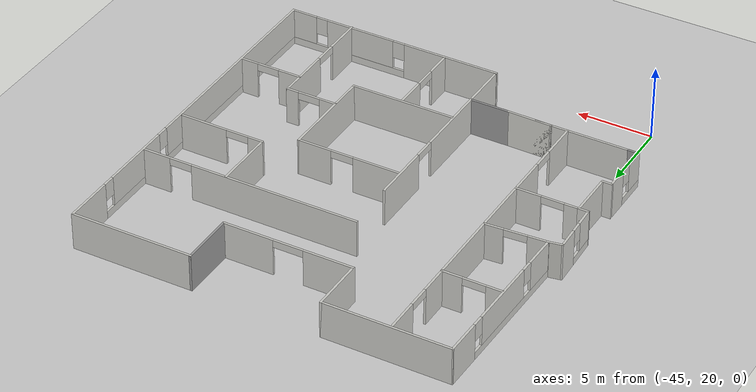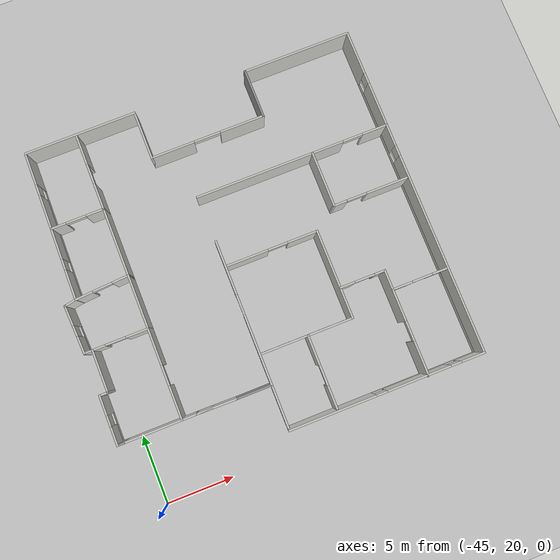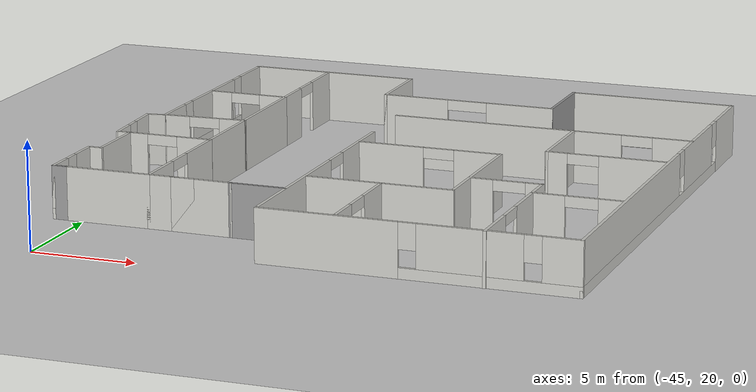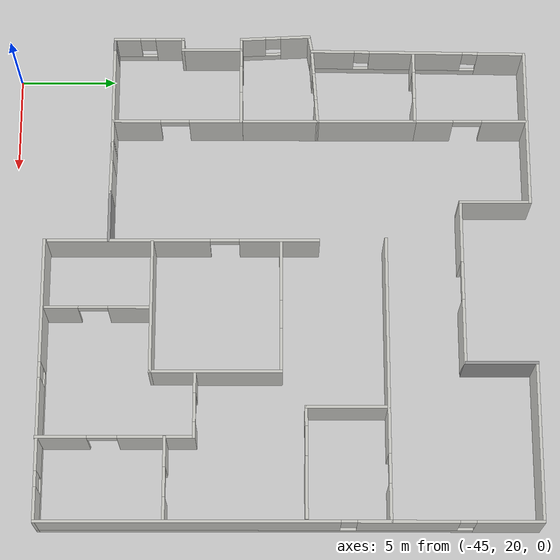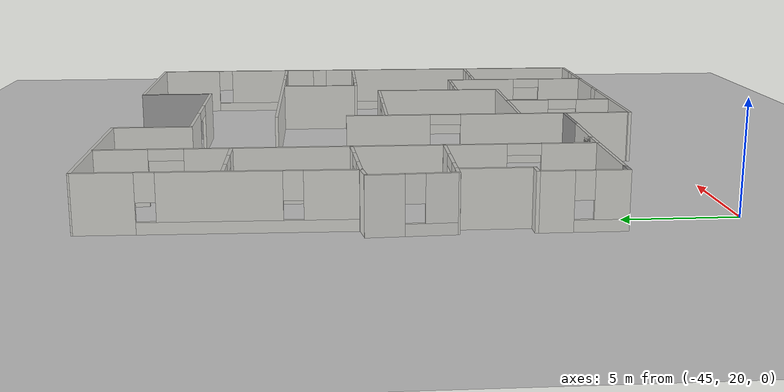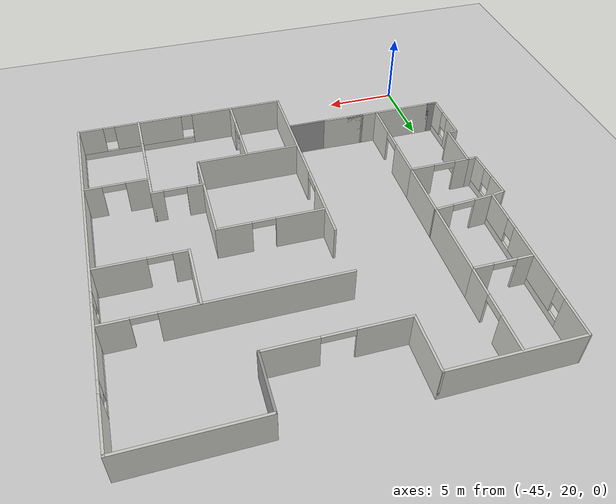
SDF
<sdf version="1.6">
 <world name="default">
  <model name="ground_plane">
   <static>1</static>
   <link name="link">
    <collision name="collision">
     <geometry><plane><normal>0 0 1</normal><size>100 100</size></plane></geometry>
     <surface><friction><ode><mu>100</mu><mu2>50</mu2></ode></friction></surface>
    </collision>
    <visual name="visual">
     <cast_shadows>0</cast_shadows>
     <geometry><plane><normal>0 0 1</normal><size>100 100</size></plane></geometry>
     <material>
      <script><uri>file://media/materials/scripts/gazebo.material</uri><name>Gazebo/Grey</name></script>
     </material>
    </visual>
   </link>
  </model>
  <model name="Multi_25_3">
   <pose>-33.5885 34.2981 0 0 -0 0</pose>
   <link name="Wall_100">
    <collision name="Wall_100_Collision">
     <geometry><box><size>7 0.15 2.5</size></box></geometry>
     <pose>0 0 1.25 0 -0 0</pose>
    </collision>
    <visual name="Wall_100_Visual">
     <pose>0 0 1.25 0 -0 0</pose>
     <geometry><box><size>7 0.15 2.5</size></box></geometry>
     <material>
      <script><uri>file://media/materials/scripts/gazebo.material</uri><name>Gazebo/CeilingTiled</name></script>
      <ambient>1 1 1 1</ambient>
     </material>
     <meta><layer>0</layer></meta>
    </visual>
    <pose>1.98594 -6.93485 0 0 -0 3.14159</pose>
   </link>
   <link name="Wall_102">
    <pose>2.05234 -9.62235 0 0 -0 -1.5708</pose>
    <visual name="Wall_102_Visual_0">
     <pose>-1.62241 0 1.25 0 -0 0</pose>
     <geometry><box><size>2.25518 0.15 2.5</size></box></geometry>
     <material>
      <script><uri>file://media/materials/scripts/gazebo.material</uri><name>Gazebo/CeilingTiled</name></script>
      <ambient>1 1 1 1</ambient>
     </material>
     <meta><layer>0</layer></meta>
    </visual>
    <collision name="Wall_102_Collision_0">
     <geometry><box><size>2.25518 0.15 2.5</size></box></geometry>
     <pose>-1.62241 0 1.25 0 -0 0</pose>
    </collision>
    <visual name="Wall_102_Visual_1">
     <pose>1.87759 0 1.25 0 -0 0</pose>
     <geometry><box><size>1.74482 0.15 2.5</size></box></geometry>
     <material>
      <script><uri>file://media/materials/scripts/gazebo.material</uri><name>Gazebo/CeilingTiled</name></script>
      <ambient>1 1 1 1</ambient>
     </material>
     <meta><layer>0</layer></meta>
    </visual>
    <collision name="Wall_102_Collision_1">
     <geometry><box><size>1.74482 0.15 2.5</size></box></geometry>
     <pose>1.87759 0 1.25 0 -0 0</pose>
    </collision>
    <visual name="Wall_102_Visual_2">
     <pose>0.255185 0 2.25 0 -0 0</pose>
     <geometry><box><size>1.5 0.15 0.5</size></box></geometry>
     <material>
      <script><uri>file://media/materials/scripts/gazebo.material</uri><name>Gazebo/CeilingTiled</name></script>
      <ambient>1 1 1 1</ambient>
     </material>
     <meta><layer>0</layer></meta>
    </visual>
    <collision name="Wall_102_Collision_2">
     <geometry><box><size>1.5 0.15 0.5</size></box></geometry>
     <pose>0.255185 0 2.25 0 -0 0</pose>
    </collision>
   </link>
   <link name="Wall_104">
    <pose>7.11294 -4.67265 0 0 -0 0</pose>
    <visual name="Wall_104_Visual_0">
     <pose>-1.17269 0 1.25 0 -0 0</pose>
     <geometry><box><size>1.15461 0.15 2.5</size></box></geometry>
     <material>
      <script><uri>file://media/materials/scripts/gazebo.material</uri><name>Gazebo/CeilingTiled</name></script>
      <ambient>1 1 1 1</ambient>
     </material>
     <meta><layer>0</layer></meta>
    </visual>
    <collision name="Wall_104_Collision_0">
     <geometry><box><size>1.15461 0.15 2.5</size></box></geometry>
     <pose>-1.17269 0 1.25 0 -0 0</pose>
    </collision>
    <visual name="Wall_104_Visual_1">
     <pose>1.32731 0 1.25 0 -0 0</pose>
     <geometry><box><size>0.845387 0.15 2.5</size></box></geometry>
     <material>
      <script><uri>file://media/materials/scripts/gazebo.material</uri><name>Gazebo/CeilingTiled</name></script>
      <ambient>1 1 1 1</ambient>
     </material>
     <meta><layer>0</layer></meta>
    </visual>
    <collision name="Wall_104_Collision_1">
     <geometry><box><size>0.845387 0.15 2.5</size></box></geometry>
     <pose>1.32731 0 1.25 0 -0 0</pose>
    </collision>
    <visual name="Wall_104_Visual_2">
     <pose>0.154613 0 2.25 0 -0 0</pose>
     <geometry><box><size>1.5 0.15 0.5</size></box></geometry>
     <material>
      <script><uri>file://media/materials/scripts/gazebo.material</uri><name>Gazebo/CeilingTiled</name></script>
      <ambient>1 1 1 1</ambient>
     </material>
     <meta><layer>0</layer></meta>
    </visual>
    <collision name="Wall_104_Collision_2">
     <geometry><box><size>1.5 0.15 0.5</size></box></geometry>
     <pose>0.154613 0 2.25 0 -0 0</pose>
    </collision>
   </link>
   <link name="Wall_105">
    <pose>8.78794 -8.59765 0 0 -0 -1.5708</pose>
    <visual name="Wall_105_Visual_0">
     <pose>-2.05426 0 1.25 0 -0 0</pose>
     <geometry><box><size>3.89148 0.15 2.5</size></box></geometry>
     <material>
      <script><uri>file://media/materials/scripts/gazebo.material</uri><name>Gazebo/CeilingTiled</name></script>
      <ambient>1 1 1 1</ambient>
     </material>
     <meta><layer>0</layer></meta>
    </visual>
    <collision name="Wall_105_Collision_0">
     <geometry><box><size>3.89148 0.15 2.5</size></box></geometry>
     <pose>-2.05426 0 1.25 0 -0 0</pose>
    </collision>
    <visual name="Wall_105_Visual_1">
     <pose>2.69574 0 1.25 0 -0 0</pose>
     <geometry><box><size>2.60852 0.15 2.5</size></box></geometry>
     <material>
      <script><uri>file://media/materials/scripts/gazebo.material</uri><name>Gazebo/CeilingTiled</name></script>
      <ambient>1 1 1 1</ambient>
     </material>
     <meta><layer>0</layer></meta>
    </visual>
    <collision name="Wall_105_Collision_1">
     <geometry><box><size>2.60852 0.15 2.5</size></box></geometry>
     <pose>2.69574 0 1.25 0 -0 0</pose>
    </collision>
    <visual name="Wall_105_Visual_2">
     <pose>0.64148 0 2.25 0 -0 0</pose>
     <geometry><box><size>1.5 0.15 0.5</size></box></geometry>
     <material>
      <script><uri>file://media/materials/scripts/gazebo.material</uri><name>Gazebo/CeilingTiled</name></script>
      <ambient>1 1 1 1</ambient>
     </material>
     <meta><layer>0</layer></meta>
    </visual>
    <collision name="Wall_105_Collision_2">
     <geometry><box><size>1.5 0.15 0.5</size></box></geometry>
     <pose>0.64148 0 2.25 0 -0 0</pose>
    </collision>
   </link>
   <link name="Wall_107">
    <collision name="Wall_107_Collision">
     <geometry><box><size>4.25 0.15 2.5</size></box></geometry>
     <pose>0 0 1.25 0 -0 0</pose>
    </collision>
    <visual name="Wall_107_Visual">
     <pose>0 0 1.25 0 -0 0</pose>
     <geometry><box><size>4.25 0.15 2.5</size></box></geometry>
     <material>
      <script><uri>file://media/materials/scripts/gazebo.material</uri><name>Gazebo/CeilingTiled</name></script>
      <ambient>1 1 1 1</ambient>
     </material>
     <meta><layer>0</layer></meta>
    </visual>
    <pose>7.23362 2.96538 0 0 -0 -1.5708</pose>
   </link>
   <link name="Wall_108">
    <pose>10.0336 0.915384 0 0 -0 0</pose>
    <visual name="Wall_108_Visual_0">
     <pose>-2.34433 0 1.25 0 -0 0</pose>
     <geometry><box><size>1.06134 0.15 2.5</size></box></geometry>
     <material>
      <script><uri>file://media/materials/scripts/gazebo.material</uri><name>Gazebo/CeilingTiled</name></script>
      <ambient>1 1 1 1</ambient>
     </material>
     <meta><layer>0</layer></meta>
    </visual>
    <collision name="Wall_108_Collision_0">
     <geometry><box><size>1.06134 0.15 2.5</size></box></geometry>
     <pose>-2.34433 0 1.25 0 -0 0</pose>
    </collision>
    <visual name="Wall_108_Visual_1">
     <pose>1.28067 0 1.25 0 -0 0</pose>
     <geometry><box><size>3.18866 0.15 2.5</size></box></geometry>
     <material>
      <script><uri>file://media/materials/scripts/gazebo.material</uri><name>Gazebo/CeilingTiled</name></script>
      <ambient>1 1 1 1</ambient>
     </material>
     <meta><layer>0</layer></meta>
    </visual>
    <collision name="Wall_108_Collision_1">
     <geometry><box><size>3.18866 0.15 2.5</size></box></geometry>
     <pose>1.28067 0 1.25 0 -0 0</pose>
    </collision>
    <visual name="Wall_108_Visual_2">
     <pose>-1.06366 0 2.25 0 -0 0</pose>
     <geometry><box><size>1.5 0.15 0.5</size></box></geometry>
     <material>
      <script><uri>file://media/materials/scripts/gazebo.material</uri><name>Gazebo/CeilingTiled</name></script>
      <ambient>1 1 1 1</ambient>
     </material>
     <meta><layer>0</layer></meta>
    </visual>
    <collision name="Wall_108_Collision_2">
     <geometry><box><size>1.5 0.15 0.5</size></box></geometry>
     <pose>-1.06366 0 2.25 0 -0 0</pose>
    </collision>
   </link>
   <link name="Wall_110">
    <pose>10.8527 -6.12767 0 0 -0 0</pose>
    <visual name="Wall_110_Visual_0">
     <pose>-1.34148 0 1.25 0 -0 0</pose>
     <geometry><box><size>1.56703 0.15 2.5</size></box></geometry>
     <material>
      <script><uri>file://media/materials/scripts/gazebo.material</uri><name>Gazebo/CeilingTiled</name></script>
      <ambient>1 1 1 1</ambient>
     </material>
     <meta><layer>0</layer></meta>
    </visual>
    <collision name="Wall_110_Collision_0">
     <geometry><box><size>1.56703 0.15 2.5</size></box></geometry>
     <pose>-1.34148 0 1.25 0 -0 0</pose>
    </collision>
    <visual name="Wall_110_Visual_1">
     <pose>1.53352 0 1.25 0 -0 0</pose>
     <geometry><box><size>1.18297 0.15 2.5</size></box></geometry>
     <material>
      <script><uri>file://media/materials/scripts/gazebo.material</uri><name>Gazebo/CeilingTiled</name></script>
      <ambient>1 1 1 1</ambient>
     </material>
     <meta><layer>0</layer></meta>
    </visual>
    <collision name="Wall_110_Collision_1">
     <geometry><box><size>1.18297 0.15 2.5</size></box></geometry>
     <pose>1.53352 0 1.25 0 -0 0</pose>
    </collision>
    <visual name="Wall_110_Visual_2">
     <pose>0.192032 0 2.25 0 -0 0</pose>
     <geometry><box><size>1.5 0.15 0.5</size></box></geometry>
     <material>
      <script><uri>file://media/materials/scripts/gazebo.material</uri><name>Gazebo/CeilingTiled</name></script>
      <ambient>1 1 1 1</ambient>
     </material>
     <meta><layer>0</layer></meta>
    </visual>
    <collision name="Wall_110_Collision_2">
     <geometry><box><size>1.5 0.15 0.5</size></box></geometry>
     <pose>0.192032 0 2.25 0 -0 0</pose>
    </collision>
   </link>
   <link name="Wall_112">
    <pose>-5.60402 -9.15067 0 0 -0 3.12613</pose>
    <visual name="Wall_112_Visual_0">
     <pose>0 0 1.25 0 -0 0</pose>
     <geometry><box><size>3.03128 0.15 2.5</size></box></geometry>
     <material>
      <script><uri>file://media/materials/scripts/gazebo.material</uri><name>Gazebo/CeilingTiled</name></script>
      <ambient>1 1 1 1</ambient>
     </material>
     <meta><layer>0</layer></meta>
    </visual>
    <collision name="Wall_112_Collision_0">
     <geometry><box><size>3.03128 0.15 2.5</size></box></geometry>
     <pose>0 0 1.25 0 -0 0</pose>
    </collision>
    <visual name="Wall_112_Visual_1">
     <pose>0.909809 0 1.25 0 -0 0</pose>
     <geometry><box><size>1.21166 0.15 2.5</size></box></geometry>
     <material>
      <script><uri>file://media/materials/scripts/gazebo.material</uri><name>Gazebo/CeilingTiled</name></script>
      <ambient>1 1 1 1</ambient>
     </material>
     <meta><layer>0</layer></meta>
    </visual>
    <collision name="Wall_112_Collision_1">
     <geometry><box><size>1.21166 0.15 2.5</size></box></geometry>
     <pose>0.909809 0 1.25 0 -0 0</pose>
    </collision>
   </link>
   <link name="Wall_54">
    <pose>5.73301 -12.4784 0 0 -0 0</pose>
    <visual name="Wall_54_Visual_0">
     <pose>-4.07467 0 1.25 0 -0 0</pose>
     <geometry><box><size>6.54566 0.15 2.5</size></box></geometry>
     <material>
      <script><uri>file://media/materials/scripts/gazebo.material</uri><name>Gazebo/CeilingTiled</name></script>
      <ambient>1 1 1 1</ambient>
     </material>
     <meta><layer>0</layer></meta>
    </visual>
    <collision name="Wall_54_Collision_0">
     <geometry><box><size>6.54566 0.15 2.5</size></box></geometry>
     <pose>-4.07467 0 1.25 0 -0 0</pose>
    </collision>
    <visual name="Wall_54_Visual_1">
     <pose>3.27283 0 0.25 0 -0 0</pose>
     <geometry><box><size>8.14934 0.15 0.5</size></box></geometry>
     <material>
      <script><uri>file://media/materials/scripts/gazebo.material</uri><name>Gazebo/CeilingTiled</name></script>
      <ambient>1 1 1 1</ambient>
     </material>
     <meta><layer>0</layer></meta>
    </visual>
    <collision name="Wall_54_Collision_1">
     <geometry><box><size>8.14934 0.15 0.5</size></box></geometry>
     <pose>3.27283 0 0.25 0 -0 0</pose>
    </collision>
    <visual name="Wall_54_Visual_2">
     <pose>2.38029 0 1.5 0 -0 0</pose>
     <geometry><box><size>4.76426 0.15 2</size></box></geometry>
     <material>
      <script><uri>file://media/materials/scripts/gazebo.material</uri><name>Gazebo/CeilingTiled</name></script>
      <ambient>1 1 1 1</ambient>
     </material>
     <meta><layer>0</layer></meta>
    </visual>
    <collision name="Wall_54_Collision_2">
     <geometry><box><size>4.76426 0.15 2</size></box></geometry>
     <pose>2.38029 0 1.5 0 -0 0</pose>
    </collision>
    <visual name="Wall_54_Visual_3">
     <pose>6.45496 0 1.5 0 -0 0</pose>
     <geometry><box><size>1.78508 0.15 2</size></box></geometry>
     <material>
      <script><uri>file://media/materials/scripts/gazebo.material</uri><name>Gazebo/CeilingTiled</name></script>
      <ambient>1 1 1 1</ambient>
     </material>
     <meta><layer>0</layer></meta>
    </visual>
    <collision name="Wall_54_Collision_3">
     <geometry><box><size>1.78508 0.15 2</size></box></geometry>
     <pose>6.45496 0 1.5 0 -0 0</pose>
    </collision>
    <visual name="Wall_54_Visual_4">
     <pose>-0.401839 0 1.9 0 -0 0</pose>
     <geometry><box><size>0.8 0.15 1.2</size></box></geometry>
     <material>
      <script><uri>file://media/materials/scripts/gazebo.material</uri><name>Gazebo/CeilingTiled</name></script>
      <ambient>1 1 1 1</ambient>
     </material>
     <meta><layer>0</layer></meta>
    </visual>
    <collision name="Wall_54_Collision_4">
     <geometry><box><size>0.8 0.15 1.2</size></box></geometry>
     <pose>-0.401839 0 1.9 0 -0 0</pose>
    </collision>
    <visual name="Wall_54_Visual_5">
     <pose>5.16242 0 1.9 0 -0 0</pose>
     <geometry><box><size>0.8 0.15 1.2</size></box></geometry>
     <material>
      <script><uri>file://media/materials/scripts/gazebo.material</uri><name>Gazebo/CeilingTiled</name></script>
      <ambient>1 1 1 1</ambient>
     </material>
     <meta><layer>0</layer></meta>
    </visual>
    <collision name="Wall_54_Collision_5">
     <geometry><box><size>0.8 0.15 1.2</size></box></geometry>
     <pose>5.16242 0 1.9 0 -0 0</pose>
    </collision>
   </link>
   <link name="Wall_56">
    <pose>13.0055 0.021602 0 0 -0 -1.5708</pose>
    <visual name="Wall_56_Visual_0">
     <pose>-10.8888 0 1.25 0 -0 0</pose>
     <geometry><box><size>3.37231 0.15 2.5</size></box></geometry>
     <material>
      <script><uri>file://media/materials/scripts/gazebo.material</uri><name>Gazebo/CeilingTiled</name></script>
      <ambient>1 1 1 1</ambient>
     </material>
     <meta><layer>0</layer></meta>
    </visual>
    <collision name="Wall_56_Collision_0">
     <geometry><box><size>3.37231 0.15 2.5</size></box></geometry>
     <pose>-10.8888 0 1.25 0 -0 0</pose>
    </collision>
    <visual name="Wall_56_Visual_1">
     <pose>1.68616 0 0.25 0 -0 0</pose>
     <geometry><box><size>21.7777 0.15 0.5</size></box></geometry>
     <material>
      <script><uri>file://media/materials/scripts/gazebo.material</uri><name>Gazebo/CeilingTiled</name></script>
      <ambient>1 1 1 1</ambient>
     </material>
     <meta><layer>0</layer></meta>
    </visual>
    <collision name="Wall_56_Collision_1">
     <geometry><box><size>21.7777 0.15 0.5</size></box></geometry>
     <pose>1.68616 0 0.25 0 -0 0</pose>
    </collision>
    <visual name="Wall_56_Visual_2">
     <pose>-5.8868 0 1.5 0 -0 0</pose>
     <geometry><box><size>5.03177 0.15 2</size></box></geometry>
     <material>
      <script><uri>file://media/materials/scripts/gazebo.material</uri><name>Gazebo/CeilingTiled</name></script>
      <ambient>1 1 1 1</ambient>
     </material>
     <meta><layer>0</layer></meta>
    </visual>
    <collision name="Wall_56_Collision_2">
     <geometry><box><size>5.03177 0.15 2</size></box></geometry>
     <pose>-5.8868 0 1.5 0 -0 0</pose>
    </collision>
    <visual name="Wall_56_Visual_3">
     <pose>5.00204 0 1.5 0 -0 0</pose>
     <geometry><box><size>15.1459 0.15 2</size></box></geometry>
     <material>
      <script><uri>file://media/materials/scripts/gazebo.material</uri><name>Gazebo/CeilingTiled</name></script>
      <ambient>1 1 1 1</ambient>
     </material>
     <meta><layer>0</layer></meta>
    </visual>
    <collision name="Wall_56_Collision_3">
     <geometry><box><size>15.1459 0.15 2</size></box></geometry>
     <pose>5.00204 0 1.5 0 -0 0</pose>
    </collision>
    <visual name="Wall_56_Visual_4">
     <pose>-8.80269 0 1.9 0 -0 0</pose>
     <geometry><box><size>0.8 0.15 1.2</size></box></geometry>
     <material>
      <script><uri>file://media/materials/scripts/gazebo.material</uri><name>Gazebo/CeilingTiled</name></script>
      <ambient>1 1 1 1</ambient>
     </material>
     <meta><layer>0</layer></meta>
    </visual>
    <collision name="Wall_56_Collision_4">
     <geometry><box><size>0.8 0.15 1.2</size></box></geometry>
     <pose>-8.80269 0 1.9 0 -0 0</pose>
    </collision>
    <visual name="Wall_56_Visual_5">
     <pose>-2.97092 0 1.9 0 -0 0</pose>
     <geometry><box><size>0.8 0.15 1.2</size></box></geometry>
     <material>
      <script><uri>file://media/materials/scripts/gazebo.material</uri><name>Gazebo/CeilingTiled</name></script>
      <ambient>1 1 1 1</ambient>
     </material>
     <meta><layer>0</layer></meta>
    </visual>
    <collision name="Wall_56_Collision_5">
     <geometry><box><size>0.8 0.15 1.2</size></box></geometry>
     <pose>-2.97092 0 1.9 0 -0 0</pose>
    </collision>
   </link>
   <link name="Wall_58">
    <collision name="Wall_58_Collision">
     <geometry><box><size>8.5 0.15 2.5</size></box></geometry>
     <pose>0 0 1.25 0 -0 0</pose>
    </collision>
    <visual name="Wall_58_Visual">
     <pose>0 0 1.25 0 -0 0</pose>
     <geometry><box><size>8.5 0.15 2.5</size></box></geometry>
     <material>
      <script><uri>file://media/materials/scripts/gazebo.material</uri><name>Gazebo/CeilingTiled</name></script>
      <ambient>1 1 1 1</ambient>
     </material>
     <meta><layer>0</layer></meta>
    </visual>
    <pose>-7.81949 12.5216 0 0 -0 0</pose>
   </link>
   <link name="Wall_59">
    <collision name="Wall_59_Collision">
     <geometry><box><size>3.75 0.15 2.5</size></box></geometry>
     <pose>0 0 1.25 0 -0 0</pose>
    </collision>
    <visual name="Wall_59_Visual">
     <pose>0 0 1.25 0 -0 0</pose>
     <geometry><box><size>3.75 0.15 2.5</size></box></geometry>
     <material>
      <script><uri>file://media/materials/scripts/gazebo.material</uri><name>Gazebo/CeilingTiled</name></script>
      <ambient>1 1 1 1</ambient>
     </material>
     <meta><layer>0</layer></meta>
    </visual>
    <pose>-3.64449 10.7216 0 0 -0 -1.5708</pose>
   </link>
   <link name="Wall_60">
    <pose>0.655513 8.9216 0 0 -0 0</pose>
    <visual name="Wall_60_Visual_0">
     <pose>-2.70309 0 1.25 0 -0 0</pose>
     <geometry><box><size>3.34382 0.15 2.5</size></box></geometry>
     <material>
      <script><uri>file://media/materials/scripts/gazebo.material</uri><name>Gazebo/CeilingTiled</name></script>
      <ambient>1 1 1 1</ambient>
     </material>
     <meta><layer>0</layer></meta>
    </visual>
    <collision name="Wall_60_Collision_0">
     <geometry><box><size>3.34382 0.15 2.5</size></box></geometry>
     <pose>-2.70309 0 1.25 0 -0 0</pose>
    </collision>
    <visual name="Wall_60_Visual_1">
     <pose>2.67191 0 1.25 0 -0 0</pose>
     <geometry><box><size>3.40618 0.15 2.5</size></box></geometry>
     <material>
      <script><uri>file://media/materials/scripts/gazebo.material</uri><name>Gazebo/CeilingTiled</name></script>
      <ambient>1 1 1 1</ambient>
     </material>
     <meta><layer>0</layer></meta>
    </visual>
    <collision name="Wall_60_Collision_1">
     <geometry><box><size>3.40618 0.15 2.5</size></box></geometry>
     <pose>2.67191 0 1.25 0 -0 0</pose>
    </collision>
    <visual name="Wall_60_Visual_2">
     <pose>-0.031182 0 2.25 0 -0 0</pose>
     <geometry><box><size>2 0.15 0.5</size></box></geometry>
     <material>
      <script><uri>file://media/materials/scripts/gazebo.material</uri><name>Gazebo/CeilingTiled</name></script>
      <ambient>1 1 1 1</ambient>
     </material>
     <meta><layer>0</layer></meta>
    </visual>
    <collision name="Wall_60_Collision_2">
     <geometry><box><size>2 0.15 0.5</size></box></geometry>
     <pose>-0.031182 0 2.25 0 -0 0</pose>
    </collision>
   </link>
   <link name="Wall_61">
    <collision name="Wall_61_Collision">
     <geometry><box><size>3.75 0.15 2.5</size></box></geometry>
     <pose>0 0 1.25 0 -0 0</pose>
    </collision>
    <visual name="Wall_61_Visual">
     <pose>0 0 1.25 0 -0 0</pose>
     <geometry><box><size>3.75 0.15 2.5</size></box></geometry>
     <material>
      <script><uri>file://media/materials/scripts/gazebo.material</uri><name>Gazebo/Grey</name></script>
      <ambient>1 1 1 1</ambient>
     </material>
     <meta><layer>0</layer></meta>
    </visual>
    <pose>4.95551 10.7216 0 0 -0 1.5708</pose>
   </link>
   <link name="Wall_62">
    <collision name="Wall_62_Collision">
     <geometry><box><size>8.2 0.15 2.5</size></box></geometry>
     <pose>0 0 1.25 0 -0 0</pose>
    </collision>
    <visual name="Wall_62_Visual">
     <pose>0 0 1.25 0 -0 0</pose>
     <geometry><box><size>8.2 0.15 2.5</size></box></geometry>
     <material>
      <script><uri>file://media/materials/scripts/gazebo.material</uri><name>Gazebo/CeilingTiled</name></script>
      <ambient>1 1 1 1</ambient>
     </material>
     <meta><layer>0</layer></meta>
    </visual>
    <pose>8.98051 12.5216 0 0 -0 0</pose>
   </link>
   <link name="Wall_64">
    <pose>-12.0734 6.9161 0 0 -0 -1.58487</pose>
    <visual name="Wall_64_Visual_0">
     <pose>-4.42225 0 1.25 0 -0 0</pose>
     <geometry><box><size>2.51762 0.15 2.5</size></box></geometry>
     <material>
      <script><uri>file://media/materials/scripts/gazebo.material</uri><name>Gazebo/CeilingTiled</name></script>
      <ambient>1 1 1 1</ambient>
     </material>
     <meta><layer>0</layer></meta>
    </visual>
    <collision name="Wall_64_Collision_0">
     <geometry><box><size>2.51762 0.15 2.5</size></box></geometry>
     <pose>-4.42225 0 1.25 0 -0 0</pose>
    </collision>
    <visual name="Wall_64_Visual_1">
     <pose>1.25881 0 0.25 0 -0 0</pose>
     <geometry><box><size>8.84449 0.15 0.5</size></box></geometry>
     <material>
      <script><uri>file://media/materials/scripts/gazebo.material</uri><name>Gazebo/CeilingTiled</name></script>
      <ambient>1 1 1 1</ambient>
     </material>
     <meta><layer>0</layer></meta>
    </visual>
    <collision name="Wall_64_Collision_1">
     <geometry><box><size>8.84449 0.15 0.5</size></box></geometry>
     <pose>1.25881 0 0.25 0 -0 0</pose>
    </collision>
    <visual name="Wall_64_Visual_2">
     <pose>0.099796 0 1.5 0 -0 0</pose>
     <geometry><box><size>4.92646 0.15 2</size></box></geometry>
     <material>
      <script><uri>file://media/materials/scripts/gazebo.material</uri><name>Gazebo/CeilingTiled</name></script>
      <ambient>1 1 1 1</ambient>
     </material>
     <meta><layer>0</layer></meta>
    </visual>
    <collision name="Wall_64_Collision_2">
     <geometry><box><size>4.92646 0.15 2</size></box></geometry>
     <pose>0.099796 0 1.5 0 -0 0</pose>
    </collision>
    <visual name="Wall_64_Visual_3">
     <pose>4.52204 0 1.5 0 -0 0</pose>
     <geometry><box><size>2.31803 0.15 2</size></box></geometry>
     <material>
      <script><uri>file://media/materials/scripts/gazebo.material</uri><name>Gazebo/CeilingTiled</name></script>
      <ambient>1 1 1 1</ambient>
     </material>
     <meta><layer>0</layer></meta>
    </visual>
    <collision name="Wall_64_Collision_3">
     <geometry><box><size>2.31803 0.15 2</size></box></geometry>
     <pose>4.52204 0 1.5 0 -0 0</pose>
    </collision>
    <visual name="Wall_64_Visual_4">
     <pose>-2.76343 0 1.9 0 -0 0</pose>
     <geometry><box><size>0.8 0.15 1.2</size></box></geometry>
     <material>
      <script><uri>file://media/materials/scripts/gazebo.material</uri><name>Gazebo/CeilingTiled</name></script>
      <ambient>1 1 1 1</ambient>
     </material>
     <meta><layer>0</layer></meta>
    </visual>
    <collision name="Wall_64_Collision_4">
     <geometry><box><size>0.8 0.15 1.2</size></box></geometry>
     <pose>-2.76343 0 1.9 0 -0 0</pose>
    </collision>
    <visual name="Wall_64_Visual_5">
     <pose>2.96303 0 1.9 0 -0 0</pose>
     <geometry><box><size>0.8 0.15 1.2</size></box></geometry>
     <material>
      <script><uri>file://media/materials/scripts/gazebo.material</uri><name>Gazebo/CeilingTiled</name></script>
      <ambient>1 1 1 1</ambient>
     </material>
     <meta><layer>0</layer></meta>
    </visual>
    <collision name="Wall_64_Collision_5">
     <geometry><box><size>0.8 0.15 1.2</size></box></geometry>
     <pose>2.96303 0 1.9 0 -0 0</pose>
    </collision>
   </link>
   <link name="Wall_65">
    <collision name="Wall_65_Collision">
     <geometry><box><size>1.01348 0.15 2.5</size></box></geometry>
     <pose>0 0 1.25 0 -0 0</pose>
    </collision>
    <visual name="Wall_65_Visual">
     <pose>0 0 1.25 0 -0 0</pose>
     <geometry><box><size>1.01348 0.15 2.5</size></box></geometry>
     <material>
      <script><uri>file://media/materials/scripts/gazebo.material</uri><name>Gazebo/CeilingTiled</name></script>
      <ambient>1 1 1 1</ambient>
     </material>
     <meta><layer>0</layer></meta>
    </visual>
    <pose>-12.551 1.2346 0 0 -0 -2.96464</pose>
   </link>
   <link name="Wall_66">
    <pose>-12.9234 -0.634902 0 0 -0 -1.52683</pose>
    <visual name="Wall_66_Visual_0">
     <pose>-1.0796 0 1.25 0 -0 0</pose>
     <geometry><box><size>1.58127 0.15 2.5</size></box></geometry>
     <material>
      <script><uri>file://media/materials/scripts/gazebo.material</uri><name>Gazebo/CeilingTiled</name></script>
      <ambient>1 1 1 1</ambient>
     </material>
     <meta><layer>0</layer></meta>
    </visual>
    <collision name="Wall_66_Collision_0">
     <geometry><box><size>1.58127 0.15 2.5</size></box></geometry>
     <pose>-1.0796 0 1.25 0 -0 0</pose>
    </collision>
    <visual name="Wall_66_Visual_1">
     <pose>0.790634 0 0.25 0 -0 0</pose>
     <geometry><box><size>2.15919 0.15 0.5</size></box></geometry>
     <material>
      <script><uri>file://media/materials/scripts/gazebo.material</uri><name>Gazebo/CeilingTiled</name></script>
      <ambient>1 1 1 1</ambient>
     </material>
     <meta><layer>0</layer></meta>
    </visual>
    <collision name="Wall_66_Collision_1">
     <geometry><box><size>2.15919 0.15 0.5</size></box></geometry>
     <pose>0.790634 0 0.25 0 -0 0</pose>
    </collision>
    <visual name="Wall_66_Visual_2">
     <pose>1.19063 0 1.5 0 -0 0</pose>
     <geometry><box><size>1.35919 0.15 2</size></box></geometry>
     <material>
      <script><uri>file://media/materials/scripts/gazebo.material</uri><name>Gazebo/CeilingTiled</name></script>
      <ambient>1 1 1 1</ambient>
     </material>
     <meta><layer>0</layer></meta>
    </visual>
    <collision name="Wall_66_Collision_2">
     <geometry><box><size>1.35919 0.15 2</size></box></geometry>
     <pose>1.19063 0 1.5 0 -0 0</pose>
    </collision>
    <visual name="Wall_66_Visual_3">
     <pose>0.111037 0 1.9 0 -0 0</pose>
     <geometry><box><size>0.8 0.15 1.2</size></box></geometry>
     <material>
      <script><uri>file://media/materials/scripts/gazebo.material</uri><name>Gazebo/CeilingTiled</name></script>
      <ambient>1 1 1 1</ambient>
     </material>
     <meta><layer>0</layer></meta>
    </visual>
    <collision name="Wall_66_Collision_3">
     <geometry><box><size>0.8 0.15 1.2</size></box></geometry>
     <pose>0.111037 0 1.9 0 -0 0</pose>
    </collision>
   </link>
   <link name="Wall_67">
    <collision name="Wall_67_Collision">
     <geometry><box><size>0.75 0.15 2.5</size></box></geometry>
     <pose>0 0 1.25 0 -0 0</pose>
    </collision>
    <visual name="Wall_67_Visual">
     <pose>0 0 1.25 0 -0 0</pose>
     <geometry><box><size>0.75 0.15 2.5</size></box></geometry>
     <material>
      <script><uri>file://media/materials/scripts/gazebo.material</uri><name>Gazebo/CeilingTiled</name></script>
      <ambient>1 1 1 1</ambient>
     </material>
     <meta><layer>0</layer></meta>
    </visual>
    <pose>-12.5445 -2.4284 0 0 -0 0</pose>
   </link>
   <link name="Wall_68">
    <collision name="Wall_68_Collision">
     <geometry><box><size>3.25 0.15 2.5</size></box></geometry>
     <pose>0 0 1.25 0 -0 0</pose>
    </collision>
    <visual name="Wall_68_Visual">
     <pose>0 0 1.25 0 -0 0</pose>
     <geometry><box><size>3.25 0.15 2.5</size></box></geometry>
     <material>
      <script><uri>file://media/materials/scripts/gazebo.material</uri><name>Gazebo/CeilingTiled</name></script>
      <ambient>1 1 1 1</ambient>
     </material>
     <meta><layer>0</layer></meta>
    </visual>
    <pose>-12.2445 -3.9784 0 0 -0 -1.5708</pose>
   </link>
   <link name="Wall_69">
    <collision name="Wall_69_Collision">
     <geometry><box><size>0.75 0.15 2.5</size></box></geometry>
     <pose>0 0 1.25 0 -0 0</pose>
    </collision>
    <visual name="Wall_69_Visual">
     <pose>0 0 1.25 0 -0 0</pose>
     <geometry><box><size>0.75 0.15 2.5</size></box></geometry>
     <material>
      <script><uri>file://media/materials/scripts/gazebo.material</uri><name>Gazebo/CeilingTiled</name></script>
      <ambient>1 1 1 1</ambient>
     </material>
     <meta><layer>0</layer></meta>
    </visual>
    <pose>-12.5445 -5.5284 0 0 -0 3.14159</pose>
   </link>
   <link name="Wall_70">
    <pose>-12.8445 -7.3284 0 0 -0 -1.5708</pose>
    <visual name="Wall_70_Visual_0">
     <pose>-1.10821 0 1.25 0 -0 0</pose>
     <geometry><box><size>1.53357 0.15 2.5</size></box></geometry>
     <material>
      <script><uri>file://media/materials/scripts/gazebo.material</uri><name>Gazebo/CeilingTiled</name></script>
      <ambient>1 1 1 1</ambient>
     </material>
     <meta><layer>0</layer></meta>
    </visual>
    <collision name="Wall_70_Collision_0">
     <geometry><box><size>1.53357 0.15 2.5</size></box></geometry>
     <pose>-1.10821 0 1.25 0 -0 0</pose>
    </collision>
    <visual name="Wall_70_Visual_1">
     <pose>0.766785 0 0.25 0 -0 0</pose>
     <geometry><box><size>2.21643 0.15 0.5</size></box></geometry>
     <material>
      <script><uri>file://media/materials/scripts/gazebo.material</uri><name>Gazebo/CeilingTiled</name></script>
      <ambient>1 1 1 1</ambient>
     </material>
     <meta><layer>0</layer></meta>
    </visual>
    <collision name="Wall_70_Collision_1">
     <geometry><box><size>2.21643 0.15 0.5</size></box></geometry>
     <pose>0.766785 0 0.25 0 -0 0</pose>
    </collision>
    <visual name="Wall_70_Visual_2">
     <pose>1.16678 0 1.5 0 -0 0</pose>
     <geometry><box><size>1.41643 0.15 2</size></box></geometry>
     <material>
      <script><uri>file://media/materials/scripts/gazebo.material</uri><name>Gazebo/CeilingTiled</name></script>
      <ambient>1 1 1 1</ambient>
     </material>
     <meta><layer>0</layer></meta>
    </visual>
    <collision name="Wall_70_Collision_2">
     <geometry><box><size>1.41643 0.15 2</size></box></geometry>
     <pose>1.16678 0 1.5 0 -0 0</pose>
    </collision>
    <visual name="Wall_70_Visual_3">
     <pose>0.058569 0 1.9 0 -0 0</pose>
     <geometry><box><size>0.8 0.15 1.2</size></box></geometry>
     <material>
      <script><uri>file://media/materials/scripts/gazebo.material</uri><name>Gazebo/CeilingTiled</name></script>
      <ambient>1 1 1 1</ambient>
     </material>
     <meta><layer>0</layer></meta>
    </visual>
    <collision name="Wall_70_Collision_3">
     <geometry><box><size>0.8 0.15 1.2</size></box></geometry>
     <pose>0.058569 0 1.9 0 -0 0</pose>
    </collision>
   </link>
   <link name="Wall_71">
    <collision name="Wall_71_Collision">
     <geometry><box><size>0.75 0.15 2.5</size></box></geometry>
     <pose>0 0 1.25 0 -0 0</pose>
    </collision>
    <visual name="Wall_71_Visual">
     <pose>0 0 1.25 0 -0 0</pose>
     <geometry><box><size>0.75 0.15 2.5</size></box></geometry>
     <material>
      <script><uri>file://media/materials/scripts/gazebo.material</uri><name>Gazebo/Grey</name></script>
      <ambient>1 1 1 1</ambient>
     </material>
     <meta><layer>0</layer></meta>
    </visual>
    <pose>-12.5445 -9.1284 0 0 -0 0</pose>
   </link>
   <link name="Wall_74">
    <pose>-8.13949 9.5466 0 0 -0 -1.5708</pose>
    <visual name="Wall_74_Visual_0">
     <pose>-1.78472 0 1.25 0 -0 0</pose>
     <geometry><box><size>2.32632 0.15 2.5</size></box></geometry>
     <material>
      <script><uri>file://media/materials/scripts/gazebo.material</uri><name>Gazebo/CeilingTiled</name></script>
      <ambient>1 1 1 1</ambient>
     </material>
     <meta><layer>0</layer></meta>
    </visual>
    <collision name="Wall_74_Collision_0">
     <geometry><box><size>2.32632 0.15 2.5</size></box></geometry>
     <pose>-1.78472 0 1.25 0 -0 0</pose>
    </collision>
    <visual name="Wall_74_Visual_1">
     <pose>1.91316 0 1.25 0 -0 0</pose>
     <geometry><box><size>2.06944 0.15 2.5</size></box></geometry>
     <material>
      <script><uri>file://media/materials/scripts/gazebo.material</uri><name>Gazebo/CeilingTiled</name></script>
      <ambient>1 1 1 1</ambient>
     </material>
     <meta><layer>0</layer></meta>
    </visual>
    <collision name="Wall_74_Collision_1">
     <geometry><box><size>2.06944 0.15 2.5</size></box></geometry>
     <pose>1.91316 0 1.25 0 -0 0</pose>
    </collision>
    <visual name="Wall_74_Visual_2">
     <pose>0.128438 0 2.25 0 -0 0</pose>
     <geometry><box><size>1.5 0.15 0.5</size></box></geometry>
     <material>
      <script><uri>file://media/materials/scripts/gazebo.material</uri><name>Gazebo/CeilingTiled</name></script>
      <ambient>1 1 1 1</ambient>
     </material>
     <meta><layer>0</layer></meta>
    </visual>
    <collision name="Wall_74_Collision_2">
     <geometry><box><size>1.5 0.15 0.5</size></box></geometry>
     <pose>0.128438 0 2.25 0 -0 0</pose>
    </collision>
   </link>
   <link name="Wall_75">
    <pose>-10.067 6.6736 0 0 -0 3.14159</pose>
    <visual name="Wall_75_Visual_0">
     <pose>-1.3 0 1.25 0 -0 0</pose>
     <geometry><box><size>1.40501 0.15 2.5</size></box></geometry>
     <material>
      <script><uri>file://media/materials/scripts/gazebo.material</uri><name>Gazebo/CeilingTiled</name></script>
      <ambient>1 1 1 1</ambient>
     </material>
     <meta><layer>0</layer></meta>
    </visual>
    <collision name="Wall_75_Collision_0">
     <geometry><box><size>1.40501 0.15 2.5</size></box></geometry>
     <pose>-1.3 0 1.25 0 -0 0</pose>
    </collision>
    <visual name="Wall_75_Visual_1">
     <pose>1.4525 0 1.25 0 -0 0</pose>
     <geometry><box><size>1.09999 0.15 2.5</size></box></geometry>
     <material>
      <script><uri>file://media/materials/scripts/gazebo.material</uri><name>Gazebo/CeilingTiled</name></script>
      <ambient>1 1 1 1</ambient>
     </material>
     <meta><layer>0</layer></meta>
    </visual>
    <collision name="Wall_75_Collision_1">
     <geometry><box><size>1.09999 0.15 2.5</size></box></geometry>
     <pose>1.4525 0 1.25 0 -0 0</pose>
    </collision>
    <visual name="Wall_75_Visual_2">
     <pose>0.152507 0 2.25 0 -0 0</pose>
     <geometry><box><size>1.5 0.15 0.5</size></box></geometry>
     <material>
      <script><uri>file://media/materials/scripts/gazebo.material</uri><name>Gazebo/CeilingTiled</name></script>
      <ambient>1 1 1 1</ambient>
     </material>
     <meta><layer>0</layer></meta>
    </visual>
    <collision name="Wall_75_Collision_2">
     <geometry><box><size>1.5 0.15 0.5</size></box></geometry>
     <pose>0.152507 0 2.25 0 -0 0</pose>
    </collision>
   </link>
   <link name="Wall_77">
    <collision name="Wall_77_Collision">
     <geometry><box><size>5.25 0.15 2.5</size></box></geometry>
     <pose>0 0 1.25 0 -0 0</pose>
    </collision>
    <visual name="Wall_77_Visual">
     <pose>0 0 1.25 0 -0 0</pose>
     <geometry><box><size>5.25 0.15 2.5</size></box></geometry>
     <material>
      <script><uri>file://media/materials/scripts/gazebo.material</uri><name>Gazebo/CeilingTiled</name></script>
      <ambient>1 1 1 1</ambient>
     </material>
     <meta><layer>0</layer></meta>
    </visual>
    <pose>-8.13949 4.1236 0 0 -0 -1.5708</pose>
   </link>
   <link name="Wall_78">
    <pose>-10.1459 1.4421 0 0 -0 -3.07614</pose>
    <visual name="Wall_78_Visual_0">
     <pose>-1.43374 0 1.25 0 -0 0</pose>
     <geometry><box><size>1.30393 0.15 2.5</size></box></geometry>
     <material>
      <script><uri>file://media/materials/scripts/gazebo.material</uri><name>Gazebo/CeilingTiled</name></script>
      <ambient>1 1 1 1</ambient>
     </material>
     <meta><layer>0</layer></meta>
    </visual>
    <collision name="Wall_78_Collision_0">
     <geometry><box><size>1.30393 0.15 2.5</size></box></geometry>
     <pose>-1.43374 0 1.25 0 -0 0</pose>
    </collision>
    <visual name="Wall_78_Visual_1">
     <pose>1.40197 0 1.25 0 -0 0</pose>
     <geometry><box><size>1.36748 0.15 2.5</size></box></geometry>
     <material>
      <script><uri>file://media/materials/scripts/gazebo.material</uri><name>Gazebo/CeilingTiled</name></script>
      <ambient>1 1 1 1</ambient>
     </material>
     <meta><layer>0</layer></meta>
    </visual>
    <collision name="Wall_78_Collision_1">
     <geometry><box><size>1.36748 0.15 2.5</size></box></geometry>
     <pose>1.40197 0 1.25 0 -0 0</pose>
    </collision>
    <visual name="Wall_78_Visual_2">
     <pose>-0.031773 0 2.25 0 -0 0</pose>
     <geometry><box><size>1.5 0.15 0.5</size></box></geometry>
     <material>
      <script><uri>file://media/materials/scripts/gazebo.material</uri><name>Gazebo/CeilingTiled</name></script>
      <ambient>1 1 1 1</ambient>
     </material>
     <meta><layer>0</layer></meta>
    </visual>
    <collision name="Wall_78_Collision_2">
     <geometry><box><size>1.5 0.15 0.5</size></box></geometry>
     <pose>-0.031773 0 2.25 0 -0 0</pose>
    </collision>
   </link>
   <link name="Wall_81">
    <pose>-1.53949 -5.3514 0 0 -0 -1.5708</pose>
    <visual name="Wall_81_Visual_0">
     <pose>-4.93696 0 1.25 0 -0 0</pose>
     <geometry><box><size>4.12608 0.15 2.5</size></box></geometry>
     <material>
      <script><uri>file://media/materials/scripts/gazebo.material</uri><name>Gazebo/CeilingTiled</name></script>
      <ambient>1 1 1 1</ambient>
     </material>
     <meta><layer>0</layer></meta>
    </visual>
    <collision name="Wall_81_Collision_0">
     <geometry><box><size>4.12608 0.15 2.5</size></box></geometry>
     <pose>-4.93696 0 1.25 0 -0 0</pose>
    </collision>
    <visual name="Wall_81_Visual_1">
     <pose>2.81304 0 1.25 0 -0 0</pose>
     <geometry><box><size>8.37392 0.15 2.5</size></box></geometry>
     <material>
      <script><uri>file://media/materials/scripts/gazebo.material</uri><name>Gazebo/CeilingTiled</name></script>
      <ambient>1 1 1 1</ambient>
     </material>
     <meta><layer>0</layer></meta>
    </visual>
    <collision name="Wall_81_Collision_1">
     <geometry><box><size>8.37392 0.15 2.5</size></box></geometry>
     <pose>2.81304 0 1.25 0 -0 0</pose>
    </collision>
    <visual name="Wall_81_Visual_2">
     <pose>-2.12392 0 2.25 0 -0 0</pose>
     <geometry><box><size>1.5 0.15 0.5</size></box></geometry>
     <material>
      <script><uri>file://media/materials/scripts/gazebo.material</uri><name>Gazebo/CeilingTiled</name></script>
      <ambient>1 1 1 1</ambient>
     </material>
     <meta><layer>0</layer></meta>
    </visual>
    <collision name="Wall_81_Collision_2">
     <geometry><box><size>1.5 0.15 0.5</size></box></geometry>
     <pose>-2.12392 0 2.25 0 -0 0</pose>
    </collision>
   </link>
   <link name="Wall_83">
    <pose>5.67966 5.04399 0 0 -0 3.14159</pose>
    <visual name="Wall_83_Visual_0">
     <pose>-6.39926 0 1.25 0 -0 0</pose>
     <geometry><box><size>1.95149 0.15 2.5</size></box></geometry>
     <material>
      <script><uri>file://media/materials/scripts/gazebo.material</uri><name>Gazebo/CeilingTiled</name></script>
      <ambient>1 1 1 1</ambient>
     </material>
     <meta><layer>0</layer></meta>
    </visual>
    <collision name="Wall_83_Collision_0">
     <geometry><box><size>1.95149 0.15 2.5</size></box></geometry>
     <pose>-6.39926 0 1.25 0 -0 0</pose>
    </collision>
    <visual name="Wall_83_Visual_1">
     <pose>1.72574 0 1.25 0 -0 0</pose>
     <geometry><box><size>11.2985 0.15 2.5</size></box></geometry>
     <material>
      <script><uri>file://media/materials/scripts/gazebo.material</uri><name>Gazebo/CeilingTiled</name></script>
      <ambient>1 1 1 1</ambient>
     </material>
     <meta><layer>0</layer></meta>
    </visual>
    <collision name="Wall_83_Collision_1">
     <geometry><box><size>11.2985 0.15 2.5</size></box></geometry>
     <pose>1.72574 0 1.25 0 -0 0</pose>
    </collision>
    <visual name="Wall_83_Visual_2">
     <pose>-4.67351 0 2.25 0 -0 0</pose>
     <geometry><box><size>1.5 0.15 0.5</size></box></geometry>
     <material>
      <script><uri>file://media/materials/scripts/gazebo.material</uri><name>Gazebo/CeilingTiled</name></script>
      <ambient>1 1 1 1</ambient>
     </material>
     <meta><layer>0</layer></meta>
    </visual>
    <collision name="Wall_83_Collision_2">
     <geometry><box><size>1.5 0.15 0.5</size></box></geometry>
     <pose>-4.67351 0 2.25 0 -0 0</pose>
    </collision>
   </link>
   <link name="Wall_86">
    <collision name="Wall_86_Collision">
     <geometry><box><size>4 0.15 2.5</size></box></geometry>
     <pose>0 0 1.25 0 -0 0</pose>
    </collision>
    <visual name="Wall_86_Visual">
     <pose>0 0 1.25 0 -0 0</pose>
     <geometry><box><size>4 0.15 2.5</size></box></geometry>
     <material>
      <script><uri>file://media/materials/scripts/gazebo.material</uri><name>Gazebo/CeilingTiled</name></script>
      <ambient>1 1 1 1</ambient>
     </material>
     <meta><layer>0</layer></meta>
    </visual>
    <pose>-8.13949 -0.351398 0 0 -0 -1.5708</pose>
   </link>
   <link name="Wall_88">
    <pose>-10.1945 -2.4284 0 0 -0 0</pose>
    <visual name="Wall_88_Visual_0">
     <pose>-1.61361 0 1.25 0 -0 0</pose>
     <geometry><box><size>1.02279 0.15 2.5</size></box></geometry>
     <material>
      <script><uri>file://media/materials/scripts/gazebo.material</uri><name>Gazebo/CeilingTiled</name></script>
      <ambient>1 1 1 1</ambient>
     </material>
     <meta><layer>0</layer></meta>
    </visual>
    <collision name="Wall_88_Collision_0">
     <geometry><box><size>1.02279 0.15 2.5</size></box></geometry>
     <pose>-1.61361 0 1.25 0 -0 0</pose>
    </collision>
    <visual name="Wall_88_Visual_1">
     <pose>1.26139 0 1.25 0 -0 0</pose>
     <geometry><box><size>1.72721 0.15 2.5</size></box></geometry>
     <material>
      <script><uri>file://media/materials/scripts/gazebo.material</uri><name>Gazebo/CeilingTiled</name></script>
      <ambient>1 1 1 1</ambient>
     </material>
     <meta><layer>0</layer></meta>
    </visual>
    <collision name="Wall_88_Collision_1">
     <geometry><box><size>1.72721 0.15 2.5</size></box></geometry>
     <pose>1.26139 0 1.25 0 -0 0</pose>
    </collision>
    <visual name="Wall_88_Visual_2">
     <pose>-0.352215 0 2.25 0 -0 0</pose>
     <geometry><box><size>1.5 0.15 0.5</size></box></geometry>
     <material>
      <script><uri>file://media/materials/scripts/gazebo.material</uri><name>Gazebo/CeilingTiled</name></script>
      <ambient>1 1 1 1</ambient>
     </material>
     <meta><layer>0</layer></meta>
    </visual>
    <collision name="Wall_88_Collision_2">
     <geometry><box><size>1.5 0.15 0.5</size></box></geometry>
     <pose>-0.352215 0 2.25 0 -0 0</pose>
    </collision>
   </link>
   <link name="Wall_90">
    <pose>-8.14449 -5.7284 0 0 -0 -1.5708</pose>
    <visual name="Wall_90_Visual_0">
     <pose>-1.98295 0 1.25 0 -0 0</pose>
     <geometry><box><size>2.7841 0.15 2.5</size></box></geometry>
     <material>
      <script><uri>file://media/materials/scripts/gazebo.material</uri><name>Gazebo/CeilingTiled</name></script>
      <ambient>1 1 1 1</ambient>
     </material>
     <meta><layer>0</layer></meta>
    </visual>
    <collision name="Wall_90_Collision_0">
     <geometry><box><size>2.7841 0.15 2.5</size></box></geometry>
     <pose>-1.98295 0 1.25 0 -0 0</pose>
    </collision>
    <visual name="Wall_90_Visual_1">
     <pose>2.14205 0 1.25 0 -0 0</pose>
     <geometry><box><size>2.4659 0.15 2.5</size></box></geometry>
     <material>
      <script><uri>file://media/materials/scripts/gazebo.material</uri><name>Gazebo/CeilingTiled</name></script>
      <ambient>1 1 1 1</ambient>
     </material>
     <meta><layer>0</layer></meta>
    </visual>
    <collision name="Wall_90_Collision_1">
     <geometry><box><size>2.4659 0.15 2.5</size></box></geometry>
     <pose>2.14205 0 1.25 0 -0 0</pose>
    </collision>
    <visual name="Wall_90_Visual_2">
     <pose>0.159105 0 2.25 0 -0 0</pose>
     <geometry><box><size>1.5 0.15 0.5</size></box></geometry>
     <material>
      <script><uri>file://media/materials/scripts/gazebo.material</uri><name>Gazebo/CeilingTiled</name></script>
      <ambient>1 1 1 1</ambient>
     </material>
     <meta><layer>0</layer></meta>
    </visual>
    <collision name="Wall_90_Collision_2">
     <geometry><box><size>1.5 0.15 0.5</size></box></geometry>
     <pose>0.159105 0 2.25 0 -0 0</pose>
    </collision>
   </link>
   <link name="Wall_92">
    <collision name="Wall_92_Collision">
     <geometry><box><size>4.25 0.15 2.5</size></box></geometry>
     <pose>0 0 1.25 0 -0 0</pose>
    </collision>
    <visual name="Wall_92_Visual">
     <pose>0 0 1.25 0 -0 0</pose>
     <geometry><box><size>4.25 0.15 2.5</size></box></geometry>
     <material>
      <script><uri>file://media/materials/scripts/gazebo.material</uri><name>Gazebo/CeilingTiled</name></script>
      <ambient>1 1 1 1</ambient>
     </material>
     <meta><layer>0</layer></meta>
    </visual>
    <pose>-10.1945 -9.1284 0 0 -0 0</pose>
   </link>
   <link name="Wall_94">
    <collision name="Wall_94_Collision">
     <geometry><box><size>1.25 0.15 2.5</size></box></geometry>
     <pose>0 0 1.25 0 -0 0</pose>
    </collision>
    <visual name="Wall_94_Visual">
     <pose>0 0 1.25 0 -0 0</pose>
     <geometry><box><size>1.25 0.15 2.5</size></box></geometry>
     <material>
      <script><uri>file://media/materials/scripts/gazebo.material</uri><name>Gazebo/CeilingTiled</name></script>
      <ambient>1 1 1 1</ambient>
     </material>
     <meta><layer>0</layer></meta>
    </visual>
    <pose>-7.59449 -9.1284 0 0 -0 0</pose>
   </link>
   <link name="Wall_96">
    <collision name="Wall_96_Collision">
     <geometry><box><size>2.75 0.15 2.5</size></box></geometry>
     <pose>0 0 1.25 0 -0 0</pose>
    </collision>
    <visual name="Wall_96_Visual">
     <pose>0 0 1.25 0 -0 0</pose>
     <geometry><box><size>2.75 0.15 2.5</size></box></geometry>
     <material>
      <script><uri>file://media/materials/scripts/gazebo.material</uri><name>Gazebo/Grey</name></script>
      <ambient>1 1 1 1</ambient>
     </material>
     <meta><layer>0</layer></meta>
    </visual>
    <pose>-2.86355 -9.17294 0 0 -0 3.14159</pose>
   </link>
   <link name="Wall_98">
    <pose>1.98594 -0.334848 0 0 -0 0</pose>
    <visual name="Wall_98_Visual_0">
     <pose>-1.90481 0 1.25 0 -0 0</pose>
     <geometry><box><size>3.19038 0.15 2.5</size></box></geometry>
     <material>
      <script><uri>file://media/materials/scripts/gazebo.material</uri><name>Gazebo/CeilingTiled</name></script>
      <ambient>1 1 1 1</ambient>
     </material>
     <meta><layer>0</layer></meta>
    </visual>
    <collision name="Wall_98_Collision_0">
     <geometry><box><size>3.19038 0.15 2.5</size></box></geometry>
     <pose>-1.90481 0 1.25 0 -0 0</pose>
    </collision>
    <visual name="Wall_98_Visual_1">
     <pose>2.34519 0 1.25 0 -0 0</pose>
     <geometry><box><size>2.30962 0.15 2.5</size></box></geometry>
     <material>
      <script><uri>file://media/materials/scripts/gazebo.material</uri><name>Gazebo/CeilingTiled</name></script>
      <ambient>1 1 1 1</ambient>
     </material>
     <meta><layer>0</layer></meta>
    </visual>
    <collision name="Wall_98_Collision_1">
     <geometry><box><size>2.30962 0.15 2.5</size></box></geometry>
     <pose>2.34519 0 1.25 0 -0 0</pose>
    </collision>
    <visual name="Wall_98_Visual_2">
     <pose>0.440377 0 2.25 0 -0 0</pose>
     <geometry><box><size>1.5 0.15 0.5</size></box></geometry>
     <material>
      <script><uri>file://media/materials/scripts/gazebo.material</uri><name>Gazebo/CeilingTiled</name></script>
      <ambient>1 1 1 1</ambient>
     </material>
     <meta><layer>0</layer></meta>
    </visual>
    <collision name="Wall_98_Collision_2">
     <geometry><box><size>1.5 0.15 0.5</size></box></geometry>
     <pose>0.440377 0 2.25 0 -0 0</pose>
    </collision>
   </link>
   <link name="Wall_99">
    <collision name="Wall_99_Collision">
     <geometry><box><size>6.75 0.15 2.5</size></box></geometry>
     <pose>0 0 1.25 0 -0 0</pose>
    </collision>
    <visual name="Wall_99_Visual">
     <pose>0 0 1.25 0 -0 0</pose>
     <geometry><box><size>6.75 0.15 2.5</size></box></geometry>
     <material>
      <script><uri>file://media/materials/scripts/gazebo.material</uri><name>Gazebo/CeilingTiled</name></script>
      <ambient>1 1 1 1</ambient>
     </material>
     <meta><layer>0</layer></meta>
    </visual>
    <pose>5.41094 -3.63485 0 0 -0 -1.5708</pose>
   </link>
   <static>1</static>
  </model>
 </world>
</sdf>
